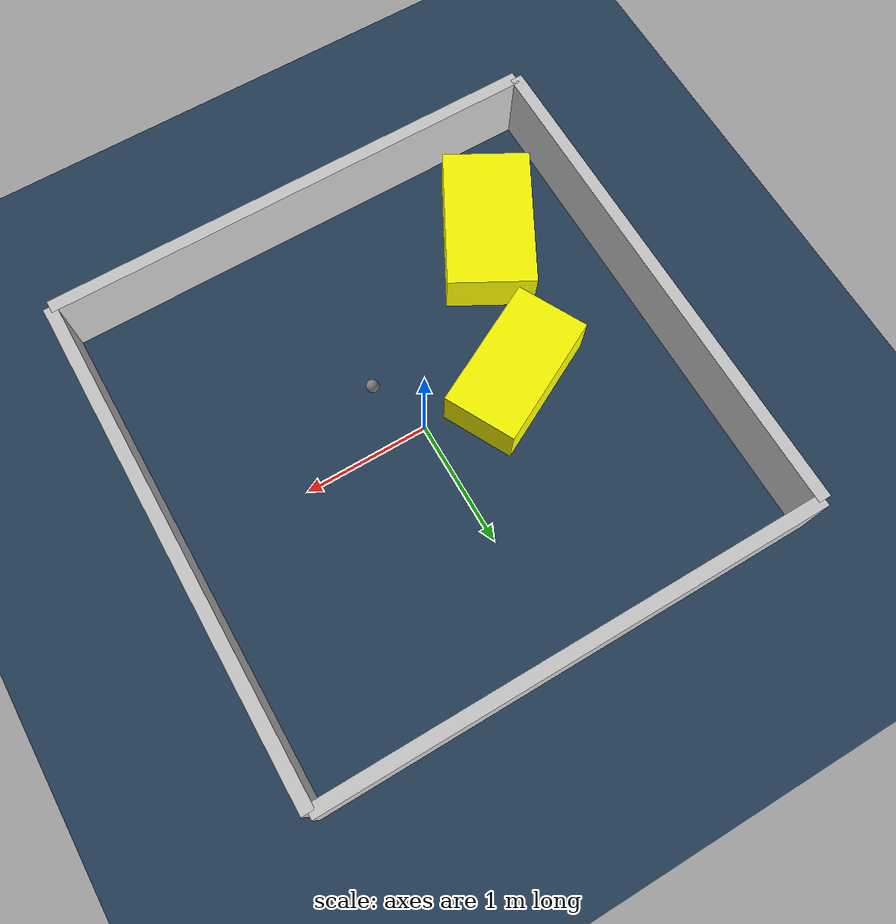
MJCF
<?xml version="1.0" ?>
<mujoco model="generated_environment">
  <option timestep="0.01" integrator="RK4" cone="elliptic"/>
  <default>
    <geom density="1"/>
  </default>
  <asset>
    <texture builtin="gradient" height="3072" rgb1="0.3 0.5 0.7" rgb2="0 0 0" type="skybox" width="512"/>
    <texture builtin="checker" height="300" mark="edge" markrgb="0.8 0.8 0.8" name="groundplane" rgb1="0.2 0.3 0.4" rgb2="0.1 0.2 0.3" type="2d" width="300"/>
    <material name="groundplane" reflectance="0.2" texrepeat="5 5" texture="groundplane" texuniform="true"/>
    <material name="robot" rgba="0.0 1.0 0.0 1"/>
  </asset>
  <worldbody>
    <light dir="0 0 -1" directional="true" pos="0 0 1.5"/>
    <geom condim="4" friction="1.0 0.005 0.001" material="groundplane" name="floor" size="0 0 0.05" type="plane"/>
    <body name="walls">
      <geom name="wall_1" condim="4" pos="-2.0 0.0 0.3" rgba="0.800000011920929 0.800000011920929 0.800000011920929 1.0" size="0.05 2.0 0.3" type="box"/>
      <geom name="wall_2" condim="4" pos="2.0 0.0 0.3" rgba="0.800000011920929 0.800000011920929 0.800000011920929 1.0" size="0.05 2.0 0.3" type="box"/>
      <geom name="wall_3" condim="4" pos="0.0 -2.0 0.3" rgba="0.800000011920929 0.800000011920929 0.800000011920929 1.0" size="2.0 0.05 0.3" type="box"/>
      <geom name="wall_4" condim="4" pos="0.0 2.0 0.3" rgba="0.800000011920929 0.800000011920929 0.800000011920929 1.0" size="2.0 0.05 0.3" type="box"/>
    </body>
    <body name="robot">
      <joint name="joint_x" type="slide" pos="0 0 0" axis="1 0 0"/>
      <joint name="joint_y" type="slide" pos="0 0 0" axis="0 1 0"/>
      <geom name="robot" type="sphere" pos="0.20254688784571706 -0.42508174396078036 0.2" size="0.05" mass="5." friction="1.0 0.005 0.0001" condim="4"/>
      <site name="sensor_ball"/>
    </body>
    <body name="obstacle_1_movable">
      <geom name="obstacle_1_movable" condim="4" pos="-0.7782371041614523 0.008558306602178156 0.2" euler="0 0 117.4363939680591" friction="1.0 0.005 0.001" rgba="1 1 0 1" size="0.2938615347937665 0.5329421372264016 0.2" type="box" mass="0.1"/>
      <joint type="free"/>
    </body>
    <body name="obstacle_2_movable">
      <geom name="obstacle_2_movable" condim="4" pos="-1.2354947055545757 -1.1308335509258873 0.2" euler="0 0 331.3279930366932" friction="1.0 0.005 0.001" rgba="1 1 0 1" size="0.3442521260085888 0.5668670249627088 0.2" type="box" mass="0.1"/>
      <joint type="free"/>
    </body>
  </worldbody>
  <actuator>
    <motor name="actuator_x" joint="joint_x" gear="1" ctrlrange="-1 1"/>
    <motor name="actuator_y" joint="joint_y" gear="1" ctrlrange="-1 1"/>
  </actuator>
</mujoco>
